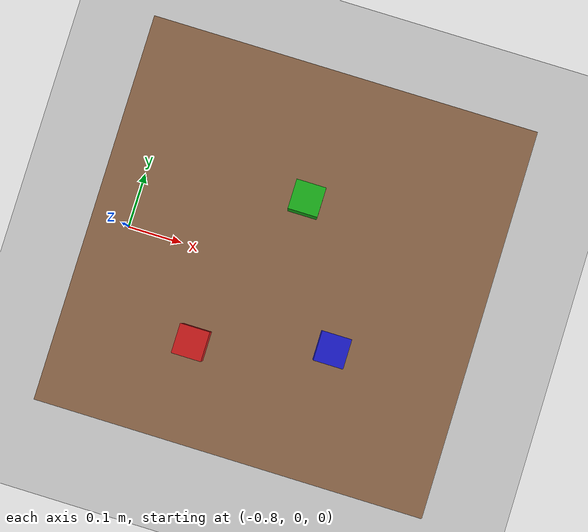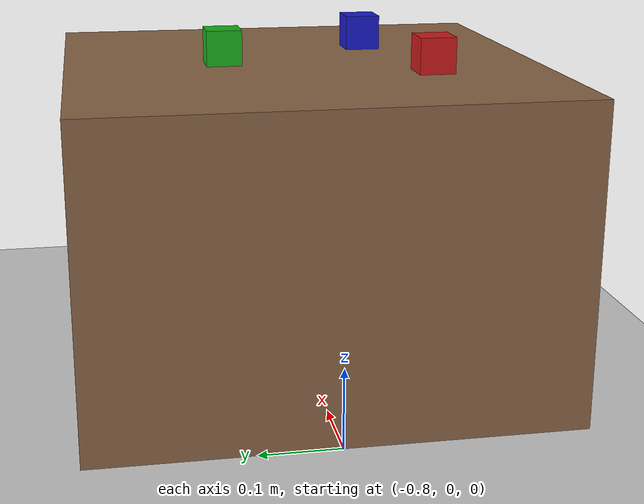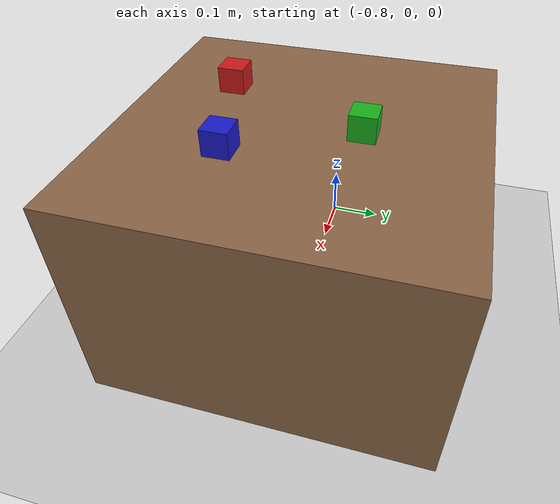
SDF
<?xml version="1.0" ?>
<sdf version="1.9">
  <world name="tabletop">
    <physics name="1ms" type="ignored">
      <max_step_size>0.001</max_step_size>
      <real_time_factor>1.0</real_time_factor>
    </physics>
    <plugin
      filename="gz-sim-physics-system"
      name="gz::sim::systems::Physics">
    </plugin>
    <plugin
      filename="gz-sim-user-commands-system"
      name="gz::sim::systems::UserCommands">
    </plugin>
    <plugin
      filename="gz-sim-scene-broadcaster-system"
      name="gz::sim::systems::SceneBroadcaster">
    </plugin>
    <plugin
      filename="gz-sim-contact-system"
      name="gz::sim::systems::Contact">
    </plugin>
    <plugin
      filename="gz-sim-sensors-system"
      name="gz::sim::systems::Sensors">
      <render_engine>ogre2</render_engine>
    </plugin>

    <gravity>0 0 -9.8</gravity>

    <light type="directional" name="sun">
      <cast_shadows>true</cast_shadows>
      <pose>0 0 10 0 0 0</pose>
      <diffuse>0.8 0.8 0.8 1</diffuse>
      <specular>0.2 0.2 0.2 1</specular>
      <attenuation>
        <range>1000</range>
        <constant>0.9</constant>
        <linear>0.01</linear>
        <quadratic>0.001</quadratic>
      </attenuation>
      <direction>-0.5 0.1 -0.9</direction>
    </light>

    <model name="ground_plane">
      <static>true</static>
      <link name="link">
        <collision name="collision">
          <geometry>
            <plane>
              <normal>0 0 1</normal>
              <size>100 100</size>
            </plane>
          </geometry>
        </collision>
        <visual name="visual">
          <geometry>
            <plane>
              <normal>0 0 1</normal>
              <size>100 100</size>
            </plane>
          </geometry>
          <material>
            <ambient>0.8 0.8 0.8 1</ambient>
            <diffuse>0.8 0.8 0.8 1</diffuse>
            <specular>0.8 0.8 0.8 1</specular>
          </material>
        </visual>
      </link>
    </model>

    <model name="table">
      <static>true</static>
      <pose>-0.5 0 0.2 0 0 0</pose>
      <link name="link">
        <collision name="collision">
          <geometry>
            <box>
              <size>0.6 0.6 0.4</size>
            </box>
          </geometry>
        </collision>
        <visual name="visual">
          <geometry>
            <box>
              <size>0.6 0.6 0.4</size>
            </box>
          </geometry>
          <material>
            <ambient>0.55 0.4 0.28 1</ambient>
            <diffuse>0.55 0.4 0.28 1</diffuse>
            <specular>0.2 0.2 0.2 1</specular>
          </material>
        </visual>
      </link>
    </model>

    <include>
      <name>cube_0</name>
      <pose>-0.6 -0.15 0.4225 0 0 0</pose>
      <uri>model://cube_red</uri>
    </include>

    <include>
      <name>cube_1</name>
      <pose>-0.5 0.1 0.4225 0 0 0</pose>
      <uri>model://cube_green</uri>
    </include>

    <include>
      <name>cube_2</name>
      <pose>-0.4 -0.1 0.4225 0 0 0</pose>
      <uri>model://cube_blue</uri>
    </include>

  </world>
</sdf>

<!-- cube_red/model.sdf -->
<sdf version="1.9">
  <model name="cube_red">
    <link name="link">
      <inertial>
        <mass>0.065</mass>
        <inertia>
          <ixx>0.0000219375</ixx>
          <ixy>0</ixy>
          <ixz>0</ixz>
          <iyy>0.0000219375</iyy>
          <iyz>0</iyz>
          <izz>0.0000219375</izz>
        </inertia>
      </inertial>
      <visual name="visual">
        <geometry>
          <box>
            <size>0.045 0.045 0.045</size>
          </box>
        </geometry>
        <material>
          <ambient>0.8 0.1 0.1 1</ambient>
          <diffuse>0.8 0.1 0.1 1</diffuse>
          <specular>0.2 0.2 0.2 1</specular>
        </material>
      </visual>
      <collision name="collision">
        <geometry>
          <box>
            <size>0.045 0.045 0.045</size>
          </box>
        </geometry>
        <surface>
          <friction>
            <ode>
              <mu>1.0</mu>
              <mu2>1.0</mu2>
            </ode>
            <bullet>
              <friction>1.0</friction>
              <friction2>1.0</friction2>
            </bullet>
          </friction>
        </surface>
      </collision>
    </link>
  </model>
</sdf>

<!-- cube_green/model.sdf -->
<sdf version="1.9">
  <model name="cube_green">
    <link name="link">
      <inertial>
        <mass>0.065</mass>
        <inertia>
          <ixx>0.0000219375</ixx>
          <ixy>0</ixy>
          <ixz>0</ixz>
          <iyy>0.0000219375</iyy>
          <iyz>0</iyz>
          <izz>0.0000219375</izz>
        </inertia>
      </inertial>
      <visual name="visual">
        <geometry>
          <box>
            <size>0.045 0.045 0.045</size>
          </box>
        </geometry>
        <material>
          <ambient>0.1 0.7 0.1 1</ambient>
          <diffuse>0.1 0.7 0.1 1</diffuse>
          <specular>0.2 0.2 0.2 1</specular>
        </material>
      </visual>
      <collision name="collision">
        <geometry>
          <box>
            <size>0.045 0.045 0.045</size>
          </box>
        </geometry>
        <surface>
          <friction>
            <ode>
              <mu>1.0</mu>
              <mu2>1.0</mu2>
            </ode>
            <bullet>
              <friction>1.0</friction>
              <friction2>1.0</friction2>
            </bullet>
          </friction>
        </surface>
      </collision>
    </link>
  </model>
</sdf>

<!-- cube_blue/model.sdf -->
<sdf version="1.9">
  <model name="cube_blue">
    <link name="link">
      <inertial>
        <mass>0.065</mass>
        <inertia>
          <ixx>0.0000219375</ixx>
          <ixy>0</ixy>
          <ixz>0</ixz>
          <iyy>0.0000219375</iyy>
          <iyz>0</iyz>
          <izz>0.0000219375</izz>
        </inertia>
      </inertial>
      <visual name="visual">
        <geometry>
          <box>
            <size>0.045 0.045 0.045</size>
          </box>
        </geometry>
        <material>
          <ambient>0.1 0.1 0.8 1</ambient>
          <diffuse>0.1 0.1 0.8 1</diffuse>
          <specular>0.2 0.2 0.2 1</specular>
        </material>
      </visual>
      <collision name="collision">
        <geometry>
          <box>
            <size>0.045 0.045 0.045</size>
          </box>
        </geometry>
        <surface>
          <friction>
            <ode>
              <mu>1.0</mu>
              <mu2>1.0</mu2>
            </ode>
            <bullet>
              <friction>1.0</friction>
              <friction2>1.0</friction2>
            </bullet>
          </friction>
        </surface>
      </collision>
    </link>
  </model>
</sdf>
